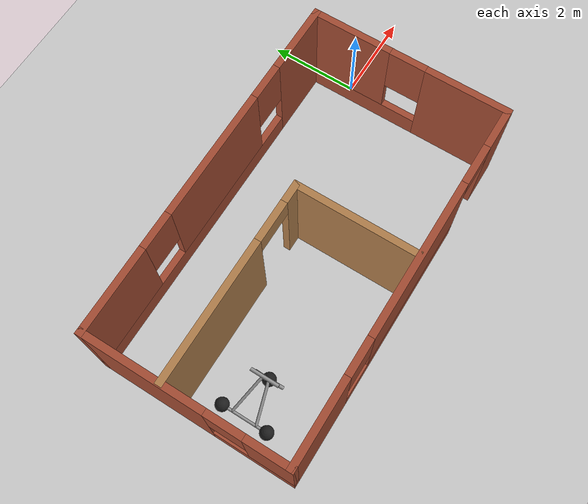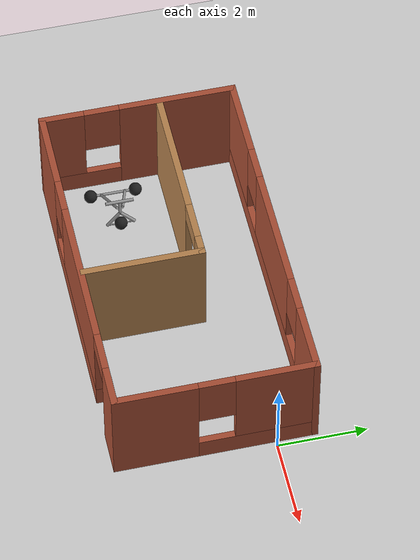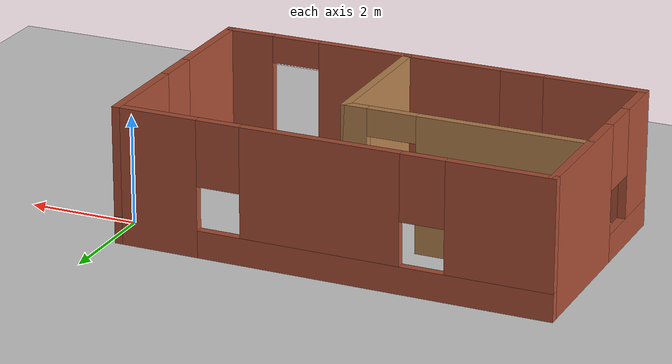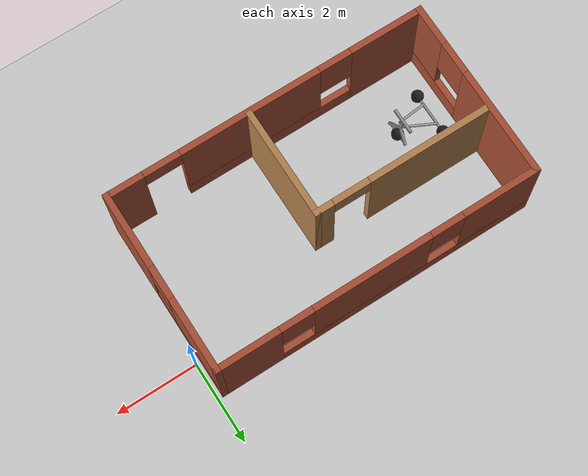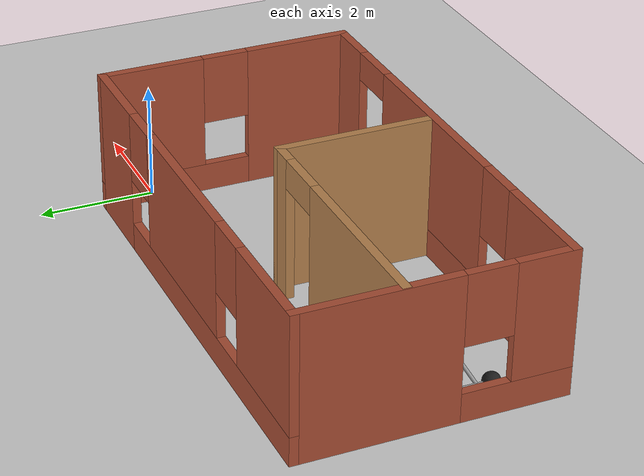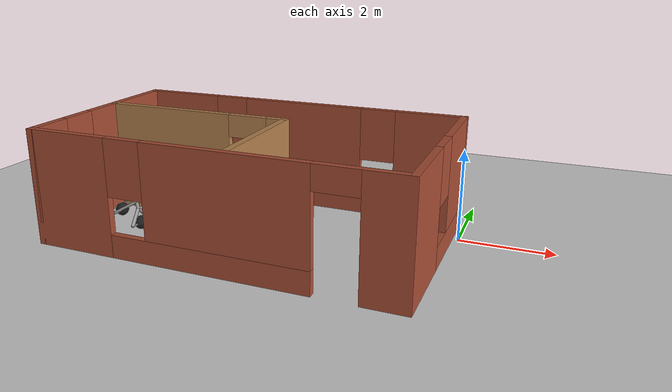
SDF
<sdf version="1.6">
 <world name="default">
  <light name="sun" type="directional">
   <pose>0 0 10 0 -0 0</pose>
   <diffuse>0.8 0.8 0.8 1</diffuse>
   <specular>0.2 0.2 0.2 1</specular>
   <attenuation>
    <range>1000</range>
    <constant>0.9</constant>
    <linear>0.01</linear>
    <quadratic>0.001</quadratic>
   </attenuation>
   <direction>-0.5 0.1 -0.9</direction>
  </light>
  <model name="ground_plane">
   <static>1</static>
   <link name="link">
    <collision name="collision">
     <geometry><plane><normal>0 0 1</normal><size>100 100</size></plane></geometry>
     <surface>
      <contact><collide_bitmask>65535</collide_bitmask></contact>
      <friction><ode><mu>100</mu><mu2>50</mu2></ode></friction>
     </surface>
    </collision>
    <visual name="visual">
     <cast_shadows>0</cast_shadows>
     <geometry><plane><normal>0 0 1</normal><size>100 100</size></plane></geometry>
     <material>
      <script><uri>file://media/materials/scripts/gazebo.material</uri><name>Gazebo/Grey</name></script>
     </material>
    </visual>
   </link>
  </model>
  <gravity>0 0 -9.8</gravity>
  <magnetic_field>6e-06 2.3e-05 -4.2e-05</magnetic_field>
  <atmosphere type="adiabatic"/>
  <physics name="default_physics" default="0" type="ode">
   <max_step_size>0.001</max_step_size>
   <real_time_factor>1</real_time_factor>
   <real_time_update_rate>1000</real_time_update_rate>
  </physics>
  <scene><ambient>0.4 0.4 0.4 1</ambient><background>0.7 0.7 0.7 1</background><shadows>1</shadows></scene>
  <spherical_coordinates>
   <surface_model>EARTH_WGS84</surface_model>
   <latitude_deg>0</latitude_deg>
   <longitude_deg>0</longitude_deg>
   <elevation>0</elevation>
   <heading_deg>0</heading_deg>
  </spherical_coordinates>
  <model name="New_world">
   <pose>-4.11456 -1.32543 0 0 -0 0</pose>
   <link name="Wall_0">
    <pose>-3.925 0 0 0 0 -1.5708</pose>
    <visual name="Wall_0_Visual_0">
     <pose>-0.90901 0 1.25 0 -0 0</pose>
     <geometry><box><size>2.68198 0.15 2.5</size></box></geometry>
     <material>
      <script><uri>file://media/materials/scripts/gazebo.material</uri><name>Gazebo/Bricks</name></script>
      <ambient>1 1 1 1</ambient>
     </material>
     <meta><layer>0</layer></meta>
    </visual>
    <collision name="Wall_0_Collision_0">
     <geometry><box><size>2.68198 0.15 2.5</size></box></geometry>
     <pose>-0.90901 0 1.25 0 -0 0</pose>
    </collision>
    <visual name="Wall_0_Visual_1">
     <pose>1.34099 0 0.25 0 -0 0</pose>
     <geometry><box><size>1.81802 0.15 0.5</size></box></geometry>
     <material>
      <script><uri>file://media/materials/scripts/gazebo.material</uri><name>Gazebo/Bricks</name></script>
      <ambient>1 1 1 1</ambient>
     </material>
     <meta><layer>0</layer></meta>
    </visual>
    <collision name="Wall_0_Collision_1">
     <geometry><box><size>1.81802 0.15 0.5</size></box></geometry>
     <pose>1.34099 0 0.25 0 -0 0</pose>
    </collision>
    <visual name="Wall_0_Visual_2">
     <pose>1.74099 0 1.5 0 -0 0</pose>
     <geometry><box><size>1.01802 0.15 2</size></box></geometry>
     <material>
      <script><uri>file://media/materials/scripts/gazebo.material</uri><name>Gazebo/Bricks</name></script>
      <ambient>1 1 1 1</ambient>
     </material>
     <meta><layer>0</layer></meta>
    </visual>
    <collision name="Wall_0_Collision_2">
     <geometry><box><size>1.01802 0.15 2</size></box></geometry>
     <pose>1.74099 0 1.5 0 -0 0</pose>
    </collision>
    <visual name="Wall_0_Visual_3">
     <pose>0.831979 0 1.9 0 -0 0</pose>
     <geometry><box><size>0.8 0.15 1.2</size></box></geometry>
     <material>
      <script><uri>file://media/materials/scripts/gazebo.material</uri><name>Gazebo/Bricks</name></script>
      <ambient>1 1 1 1</ambient>
     </material>
     <meta><layer>0</layer></meta>
    </visual>
    <collision name="Wall_0_Collision_3">
     <geometry><box><size>0.8 0.15 1.2</size></box></geometry>
     <pose>0.831979 0 1.9 0 -0 0</pose>
    </collision>
   </link>
   <link name="Wall_1">
    <pose>0 -2.175 0 0 -0 0</pose>
    <visual name="Wall_1_Visual_0">
     <pose>-3.0638 0 1.25 0 -0 0</pose>
     <geometry><box><size>1.87241 0.15 2.5</size></box></geometry>
     <material>
      <script><uri>file://media/materials/scripts/gazebo.material</uri><name>Gazebo/Bricks</name></script>
      <ambient>0.760784 0.662745 0.627451 1</ambient>
     </material>
     <meta><layer>0</layer></meta>
    </visual>
    <collision name="Wall_1_Collision_0">
     <geometry><box><size>1.87241 0.15 2.5</size></box></geometry>
     <pose>-3.0638 0 1.25 0 -0 0</pose>
    </collision>
    <visual name="Wall_1_Visual_1">
     <pose>3.52392 0 1.25 0 -0 0</pose>
     <geometry><box><size>0.952169 0.15 2.5</size></box></geometry>
     <material>
      <script><uri>file://media/materials/scripts/gazebo.material</uri><name>Gazebo/Bricks</name></script>
      <ambient>0.760784 0.662745 0.627451 1</ambient>
     </material>
     <meta><layer>0</layer></meta>
    </visual>
    <collision name="Wall_1_Collision_1">
     <geometry><box><size>0.952169 0.15 2.5</size></box></geometry>
     <pose>3.52392 0 1.25 0 -0 0</pose>
    </collision>
    <visual name="Wall_1_Visual_2">
     <pose>0.010119 0 0.25 0 -0 0</pose>
     <geometry><box><size>4.27542 0.15 0.5</size></box></geometry>
     <material>
      <script><uri>file://media/materials/scripts/gazebo.material</uri><name>Gazebo/Bricks</name></script>
      <ambient>0.760784 0.662745 0.627451 1</ambient>
     </material>
     <meta><layer>0</layer></meta>
    </visual>
    <collision name="Wall_1_Collision_2">
     <geometry><box><size>4.27542 0.15 0.5</size></box></geometry>
     <pose>0.010119 0 0.25 0 -0 0</pose>
    </collision>
    <visual name="Wall_1_Visual_3">
     <pose>0.410119 0 1.5 0 -0 0</pose>
     <geometry><box><size>3.47542 0.15 2</size></box></geometry>
     <material>
      <script><uri>file://media/materials/scripts/gazebo.material</uri><name>Gazebo/Bricks</name></script>
      <ambient>0.760784 0.662745 0.627451 1</ambient>
     </material>
     <meta><layer>0</layer></meta>
    </visual>
    <collision name="Wall_1_Collision_3">
     <geometry><box><size>3.47542 0.15 2</size></box></geometry>
     <pose>0.410119 0 1.5 0 -0 0</pose>
    </collision>
    <visual name="Wall_1_Visual_4">
     <pose>-1.72759 0 1.9 0 -0 0</pose>
     <geometry><box><size>0.8 0.15 1.2</size></box></geometry>
     <material>
      <script><uri>file://media/materials/scripts/gazebo.material</uri><name>Gazebo/Bricks</name></script>
      <ambient>0.760784 0.662745 0.627451 1</ambient>
     </material>
     <meta><layer>0</layer></meta>
    </visual>
    <collision name="Wall_1_Collision_4">
     <geometry><box><size>0.8 0.15 1.2</size></box></geometry>
     <pose>-1.72759 0 1.9 0 -0 0</pose>
    </collision>
    <visual name="Wall_1_Visual_5">
     <pose>2.59783 0 2.25 0 -0 0</pose>
     <geometry><box><size>0.9 0.15 0.5</size></box></geometry>
     <material>
      <script><uri>file://media/materials/scripts/gazebo.material</uri><name>Gazebo/Bricks</name></script>
      <ambient>0.760784 0.662745 0.627451 1</ambient>
     </material>
     <meta><layer>0</layer></meta>
    </visual>
    <collision name="Wall_1_Collision_5">
     <geometry><box><size>0.9 0.15 0.5</size></box></geometry>
     <pose>2.59783 0 2.25 0 -0 0</pose>
    </collision>
   </link>
   <link name="Wall_2">
    <pose>3.925 0 0 0 -0 1.5708</pose>
    <visual name="Wall_2_Visual_0">
     <pose>-1.31307 0 1.25 0 -0 0</pose>
     <geometry><box><size>1.87385 0.15 2.5</size></box></geometry>
     <material>
      <script><uri>file://media/materials/scripts/gazebo.material</uri><name>Gazebo/Bricks</name></script>
      <ambient>1 0.764706 0.305882 1</ambient>
     </material>
     <meta><layer>0</layer></meta>
    </visual>
    <collision name="Wall_2_Collision_0">
     <geometry><box><size>1.87385 0.15 2.5</size></box></geometry>
     <pose>-1.31307 0 1.25 0 -0 0</pose>
    </collision>
    <visual name="Wall_2_Visual_1">
     <pose>0.936927 0 0.25 0 -0 0</pose>
     <geometry><box><size>2.62615 0.15 0.5</size></box></geometry>
     <material>
      <script><uri>file://media/materials/scripts/gazebo.material</uri><name>Gazebo/Bricks</name></script>
      <ambient>1 0.764706 0.305882 1</ambient>
     </material>
     <meta><layer>0</layer></meta>
    </visual>
    <collision name="Wall_2_Collision_1">
     <geometry><box><size>2.62615 0.15 0.5</size></box></geometry>
     <pose>0.936927 0 0.25 0 -0 0</pose>
    </collision>
    <visual name="Wall_2_Visual_2">
     <pose>1.33693 0 1.5 0 -0 0</pose>
     <geometry><box><size>1.82615 0.15 2</size></box></geometry>
     <material>
      <script><uri>file://media/materials/scripts/gazebo.material</uri><name>Gazebo/Bricks</name></script>
      <ambient>1 0.764706 0.305882 1</ambient>
     </material>
     <meta><layer>0</layer></meta>
    </visual>
    <collision name="Wall_2_Collision_2">
     <geometry><box><size>1.82615 0.15 2</size></box></geometry>
     <pose>1.33693 0 1.5 0 -0 0</pose>
    </collision>
    <visual name="Wall_2_Visual_3">
     <pose>0.023853 0 1.9 0 -0 0</pose>
     <geometry><box><size>0.8 0.15 1.2</size></box></geometry>
     <material>
      <script><uri>file://media/materials/scripts/gazebo.material</uri><name>Gazebo/Bricks</name></script>
      <ambient>1 0.764706 0.305882 1</ambient>
     </material>
     <meta><layer>0</layer></meta>
    </visual>
    <collision name="Wall_2_Collision_3">
     <geometry><box><size>0.8 0.15 1.2</size></box></geometry>
     <pose>0.023853 0 1.9 0 -0 0</pose>
    </collision>
   </link>
   <link name="Wall_3">
    <pose>0 2.175 0 0 -0 3.14159</pose>
    <visual name="Wall_3_Visual_0">
     <pose>-3.20978 0 1.25 0 -0 0</pose>
     <geometry><box><size>1.58043 0.15 2.5</size></box></geometry>
     <material>
      <script><uri>file://media/materials/scripts/gazebo.material</uri><name>Gazebo/Bricks</name></script>
      <ambient>0.435294 0.796078 0.67451 1</ambient>
     </material>
     <meta><layer>0</layer></meta>
    </visual>
    <collision name="Wall_3_Collision_0">
     <geometry><box><size>1.58043 0.15 2.5</size></box></geometry>
     <pose>-3.20978 0 1.25 0 -0 0</pose>
    </collision>
    <visual name="Wall_3_Visual_1">
     <pose>0.790217 0 0.25 0 -0 0</pose>
     <geometry><box><size>6.41957 0.15 0.5</size></box></geometry>
     <material>
      <script><uri>file://media/materials/scripts/gazebo.material</uri><name>Gazebo/Bricks</name></script>
      <ambient>0.435294 0.796078 0.67451 1</ambient>
     </material>
     <meta><layer>0</layer></meta>
    </visual>
    <collision name="Wall_3_Collision_1">
     <geometry><box><size>6.41957 0.15 0.5</size></box></geometry>
     <pose>0.790217 0 0.25 0 -0 0</pose>
    </collision>
    <visual name="Wall_3_Visual_2">
     <pose>-0.169118 0 1.5 0 -0 0</pose>
     <geometry><box><size>2.9009 0.15 2</size></box></geometry>
     <material>
      <script><uri>file://media/materials/scripts/gazebo.material</uri><name>Gazebo/Bricks</name></script>
      <ambient>0.435294 0.796078 0.67451 1</ambient>
     </material>
     <meta><layer>0</layer></meta>
    </visual>
    <collision name="Wall_3_Collision_2">
     <geometry><box><size>2.9009 0.15 2</size></box></geometry>
     <pose>-0.169118 0 1.5 0 -0 0</pose>
    </collision>
    <visual name="Wall_3_Visual_3">
     <pose>3.04067 0 1.5 0 -0 0</pose>
     <geometry><box><size>1.91867 0.15 2</size></box></geometry>
     <material>
      <script><uri>file://media/materials/scripts/gazebo.material</uri><name>Gazebo/Bricks</name></script>
      <ambient>0.435294 0.796078 0.67451 1</ambient>
     </material>
     <meta><layer>0</layer></meta>
    </visual>
    <collision name="Wall_3_Collision_3">
     <geometry><box><size>1.91867 0.15 2</size></box></geometry>
     <pose>3.04067 0 1.5 0 -0 0</pose>
    </collision>
    <visual name="Wall_3_Visual_4">
     <pose>-2.01957 0 1.9 0 -0 0</pose>
     <geometry><box><size>0.8 0.15 1.2</size></box></geometry>
     <material>
      <script><uri>file://media/materials/scripts/gazebo.material</uri><name>Gazebo/Bricks</name></script>
      <ambient>0.435294 0.796078 0.67451 1</ambient>
     </material>
     <meta><layer>0</layer></meta>
    </visual>
    <collision name="Wall_3_Collision_4">
     <geometry><box><size>0.8 0.15 1.2</size></box></geometry>
     <pose>-2.01957 0 1.9 0 -0 0</pose>
    </collision>
    <visual name="Wall_3_Visual_5">
     <pose>1.68133 0 1.9 0 -0 0</pose>
     <geometry><box><size>0.8 0.15 1.2</size></box></geometry>
     <material>
      <script><uri>file://media/materials/scripts/gazebo.material</uri><name>Gazebo/Bricks</name></script>
      <ambient>0.435294 0.796078 0.67451 1</ambient>
     </material>
     <meta><layer>0</layer></meta>
    </visual>
    <collision name="Wall_3_Collision_5">
     <geometry><box><size>0.8 0.15 1.2</size></box></geometry>
     <pose>1.68133 0 1.9 0 -0 0</pose>
    </collision>
   </link>
   <link name="Wall_5">
    <pose>-1.72687 0.486466 0 0 -0 0</pose>
    <visual name="Wall_5_Visual_0">
     <pose>-0.691139 0 1.25 0 -0 0</pose>
     <geometry><box><size>3.11772 0.15 2.5</size></box></geometry>
     <material>
      <script><uri>file://media/materials/scripts/gazebo.material</uri><name>Gazebo/Wood</name></script>
      <ambient>1 1 1 1</ambient>
     </material>
     <meta><layer>0</layer></meta>
    </visual>
    <collision name="Wall_5_Collision_0">
     <geometry><box><size>3.11772 0.15 2.5</size></box></geometry>
     <pose>-0.691139 0 1.25 0 -0 0</pose>
    </collision>
    <visual name="Wall_5_Visual_1">
     <pose>2.00886 0 1.25 0 -0 0</pose>
     <geometry><box><size>0.482278 0.15 2.5</size></box></geometry>
     <material>
      <script><uri>file://media/materials/scripts/gazebo.material</uri><name>Gazebo/Wood</name></script>
      <ambient>1 1 1 1</ambient>
     </material>
     <meta><layer>0</layer></meta>
    </visual>
    <collision name="Wall_5_Collision_1">
     <geometry><box><size>0.482278 0.15 2.5</size></box></geometry>
     <pose>2.00886 0 1.25 0 -0 0</pose>
    </collision>
    <visual name="Wall_5_Visual_2">
     <pose>1.31772 0 2.25 0 -0 0</pose>
     <geometry><box><size>0.9 0.15 0.5</size></box></geometry>
     <material>
      <script><uri>file://media/materials/scripts/gazebo.material</uri><name>Gazebo/Wood</name></script>
      <ambient>1 1 1 1</ambient>
     </material>
     <meta><layer>0</layer></meta>
    </visual>
    <collision name="Wall_5_Collision_2">
     <geometry><box><size>0.9 0.15 0.5</size></box></geometry>
     <pose>1.31772 0 2.25 0 -0 0</pose>
    </collision>
   </link>
   <link name="Wall_6">
    <collision name="Wall_6_Collision">
     <geometry><box><size>2.75 0.15 2.5</size></box></geometry>
     <pose>0 0 1.25 0 -0 0</pose>
    </collision>
    <visual name="Wall_6_Visual">
     <pose>0 0 1.25 0 -0 0</pose>
     <geometry><box><size>2.75 0.15 2.5</size></box></geometry>
     <material>
      <script><uri>file://media/materials/scripts/gazebo.material</uri><name>Gazebo/Wood</name></script>
      <ambient>1 1 1 1</ambient>
     </material>
     <meta><layer>0</layer></meta>
    </visual>
    <pose>0.44813 -0.813534 0 0 0 -1.5708</pose>
   </link>
   <static>1</static>
  </model>
  <model name="trisphere_cycle">
   <link name="frame">
    <pose>-0.408559 0 0.385023 0 -0.522021 0</pose>
    <inertial>
     <mass>10</mass>
     <inertia><ixx>0.228</ixx><iyy>0.743521</iyy><izz>0.965521</izz><ixy>0</ixy><ixz>0</ixz><iyz>0</iyz></inertia>
    </inertial>
    <collision name="axle_collision">
     <pose>-0.471335 0 0 1.5708 -0 0</pose>
     <geometry><cylinder><length>1.03923</length><radius>0.03</radius></cylinder></geometry>
    </collision>
    <visual name="axle_visual">
     <pose>-0.471335 0 0 1.5708 -0 0</pose>
     <geometry><cylinder><length>1.03923</length><radius>0.03</radius></cylinder></geometry>
     <material>
      <script><uri>file://media/materials/scripts/gazebo.material</uri><name>Gazebo/Grey</name></script>
     </material>
    </visual>
    <collision name="frame_left_collision">
     <pose>0 0.171552 0 2.986 1.57079 2.76675</pose>
     <geometry><cylinder><length>1.00317</length><radius>0.03</radius></cylinder></geometry>
    </collision>
    <visual name="frame_left_visual">
     <pose>0 0.171552 0 2.986 1.57079 2.76675</pose>
     <geometry><cylinder><length>1.00317</length><radius>0.03</radius></cylinder></geometry>
     <material>
      <script><uri>file://media/materials/scripts/gazebo.material</uri><name>Gazebo/Grey</name></script>
     </material>
    </visual>
    <collision name="frame_right_collision">
     <pose>0 -0.171552 0 -2.986 1.57079 -2.76675</pose>
     <geometry><cylinder><length>1.00317</length><radius>0.03</radius></cylinder></geometry>
    </collision>
    <visual name="frame_right_visual">
     <pose>0 -0.171552 0 -2.986 1.57079 -2.76675</pose>
     <geometry><cylinder><length>1.00317</length><radius>0.03</radius></cylinder></geometry>
     <material>
      <script><uri>file://media/materials/scripts/gazebo.material</uri><name>Gazebo/Grey</name></script>
     </material>
    </visual>
   </link>
   <link name="fork">
    <pose>0.041441 0 0.385023 0 -0.174533 0</pose>
    <inertial>
     <mass>3</mass>
     <inertia>
      <ixx>0.158203</ixx>
      <iyy>0.0583594</iyy>
      <izz>0.102656</izz>
      <ixy>0</ixy>
      <ixz>0</ixz>
      <iyz>0</iyz>
     </inertia>
    </inertial>
    <collision name="handlebars_collision">
     <pose>0 0 0.397748 1.5708 -0 0</pose>
     <geometry><cylinder><length>0.636396</length><radius>0.0375</radius></cylinder></geometry>
    </collision>
    <visual name="handlebars_visual">
     <pose>0 0 0.397748 1.5708 -0 0</pose>
     <geometry><cylinder><length>0.636396</length><radius>0.0375</radius></cylinder></geometry>
     <material>
      <script><uri>file://media/materials/scripts/gazebo.material</uri><name>Gazebo/Grey</name></script>
     </material>
    </visual>
    <collision name="headtube_collision">
     <pose>0 0 0.238649 0 -0 0</pose>
     <geometry><cylinder><length>0.318198</length><radius>0.0375</radius></cylinder></geometry>
    </collision>
    <visual name="headtube_visual">
     <pose>0 0 0.238649 0 -0 0</pose>
     <geometry><cylinder><length>0.318198</length><radius>0.0375</radius></cylinder></geometry>
     <material>
      <script><uri>file://media/materials/scripts/gazebo.material</uri><name>Gazebo/Grey</name></script>
     </material>
    </visual>
    <collision name="spindle_collision">
     <pose>0 0 -0.238649 1.5708 -0 0</pose>
     <geometry><cylinder><length>0.636396</length><radius>0.015</radius></cylinder></geometry>
    </collision>
    <visual name="spindle_visual">
     <pose>0 0 -0.238649 1.5708 -0 0</pose>
     <geometry><cylinder><length>0.636396</length><radius>0.015</radius></cylinder></geometry>
     <material>
      <script><uri>file://media/materials/scripts/gazebo.material</uri><name>Gazebo/Grey</name></script>
     </material>
    </visual>
    <collision name="fork_left_collision">
     <pose>0 0.159099 -0.07955 0.785398 -0 0</pose>
     <geometry><cylinder><length>0.45</length><radius>0.0375</radius></cylinder></geometry>
    </collision>
    <visual name="fork_left_visual">
     <pose>0 0.159099 -0.07955 0.785398 -0 0</pose>
     <geometry><cylinder><length>0.45</length><radius>0.0375</radius></cylinder></geometry>
     <material>
      <script><uri>file://media/materials/scripts/gazebo.material</uri><name>Gazebo/Grey</name></script>
     </material>
    </visual>
    <collision name="fork_right_collision">
     <pose>0 -0.159099 -0.07955 -0.785398 0 0</pose>
     <geometry><cylinder><length>0.45</length><radius>0.0375</radius></cylinder></geometry>
    </collision>
    <visual name="fork_right_visual">
     <pose>0 -0.159099 -0.07955 -0.785398 0 0</pose>
     <geometry><cylinder><length>0.45</length><radius>0.0375</radius></cylinder></geometry>
     <material>
      <script><uri>file://media/materials/scripts/gazebo.material</uri><name>Gazebo/Grey</name></script>
     </material>
    </visual>
   </link>
   <link name="wheel_front">
    <pose>0.082882 0 0.15 0 -0 0</pose>
    <inertial>
     <mass>0.5</mass>
     <inertia><ixx>0.0045</ixx><iyy>0.0045</iyy><izz>0.0045</izz><ixy>0</ixy><ixz>0</ixz><iyz>0</iyz></inertia>
    </inertial>
    <collision name="collision">
     <geometry><sphere><radius>0.15</radius></sphere></geometry>
     <surface><contact><ode><kp>1e+08</kp><kd>1</kd><min_depth>0.0005</min_depth></ode></contact></surface>
    </collision>
    <visual name="visual">
     <geometry><sphere><radius>0.15</radius></sphere></geometry>
     <material>
      <script><uri>file://media/materials/scripts/gazebo.material</uri><name>Gazebo/Black</name></script>
     </material>
    </visual>
   </link>
   <joint name="wheel_front_steer" type="revolute">
    <parent>frame</parent>
    <child>fork</child>
    <axis>
     <xyz>0 0 1</xyz>
     <limit><lower>-0.959931</lower><upper>0.959931</upper></limit>
     <use_parent_model_frame>0</use_parent_model_frame>
     <dynamics><spring_reference>0</spring_reference><spring_stiffness>0</spring_stiffness></dynamics>
    </axis>
   </joint>
   <joint name="wheel_front_spin" type="revolute">
    <parent>fork</parent>
    <child>wheel_front</child>
    <axis>
     <xyz>0 1 0</xyz>
     <use_parent_model_frame>0</use_parent_model_frame>
     <limit><lower>-1e+16</lower><upper>1e+16</upper></limit>
     <dynamics><spring_reference>0</spring_reference><spring_stiffness>0</spring_stiffness></dynamics>
    </axis>
   </joint>
   <link name="wheel_rear_left">
    <pose>-0.817118 0.519615 0.15 0 -0 0</pose>
    <inertial>
     <mass>0.5</mass>
     <inertia><ixx>0.0045</ixx><iyy>0.0045</iyy><izz>0.0045</izz><ixy>0</ixy><ixz>0</ixz><iyz>0</iyz></inertia>
    </inertial>
    <collision name="collision">
     <geometry><sphere><radius>0.15</radius></sphere></geometry>
     <surface><contact><ode><kp>1e+08</kp><kd>1</kd><min_depth>0.0005</min_depth></ode></contact></surface>
    </collision>
    <visual name="visual">
     <geometry><sphere><radius>0.15</radius></sphere></geometry>
     <material>
      <script><uri>file://media/materials/scripts/gazebo.material</uri><name>Gazebo/Black</name></script>
     </material>
    </visual>
   </link>
   <joint name="wheel_rear_left_spin" type="revolute">
    <parent>frame</parent>
    <child>wheel_rear_left</child>
    <axis>
     <xyz>0 1 0</xyz>
     <use_parent_model_frame>0</use_parent_model_frame>
     <limit><lower>-1e+16</lower><upper>1e+16</upper></limit>
     <dynamics><spring_reference>0</spring_reference><spring_stiffness>0</spring_stiffness></dynamics>
    </axis>
   </joint>
   <link name="wheel_rear_right">
    <pose>-0.817118 -0.519615 0.15 0 -0 0</pose>
    <inertial>
     <mass>0.5</mass>
     <inertia><ixx>0.0045</ixx><iyy>0.0045</iyy><izz>0.0045</izz><ixy>0</ixy><ixz>0</ixz><iyz>0</iyz></inertia>
    </inertial>
    <collision name="collision">
     <geometry><sphere><radius>0.15</radius></sphere></geometry>
     <surface><contact><ode><kp>1e+08</kp><kd>1</kd><min_depth>0.0005</min_depth></ode></contact></surface>
    </collision>
    <visual name="visual">
     <geometry><sphere><radius>0.15</radius></sphere></geometry>
     <material>
      <script><uri>file://media/materials/scripts/gazebo.material</uri><name>Gazebo/Black</name></script>
     </material>
    </visual>
   </link>
   <joint name="wheel_rear_right_spin" type="revolute">
    <parent>frame</parent>
    <child>wheel_rear_right</child>
    <axis>
     <xyz>0 1 0</xyz>
     <use_parent_model_frame>0</use_parent_model_frame>
     <limit><lower>-1e+16</lower><upper>1e+16</upper></limit>
     <dynamics><spring_reference>0</spring_reference><spring_stiffness>0</spring_stiffness></dynamics>
    </axis>
   </joint>
   <pose>-6.7223 -2.05099 -0.000501 0 1e-06 -0.000216</pose>
  </model>
 </world>
</sdf>
